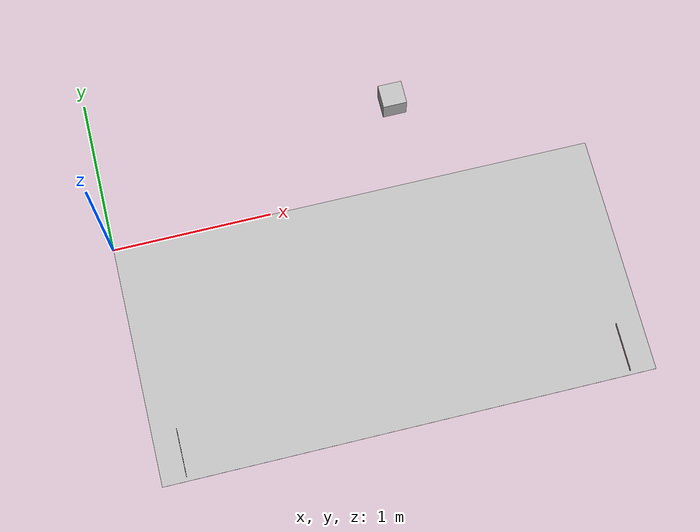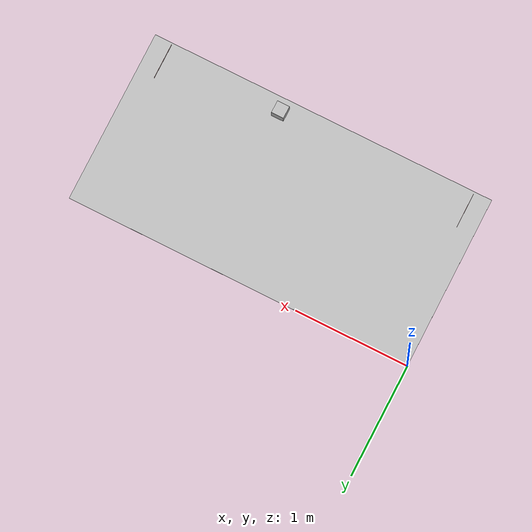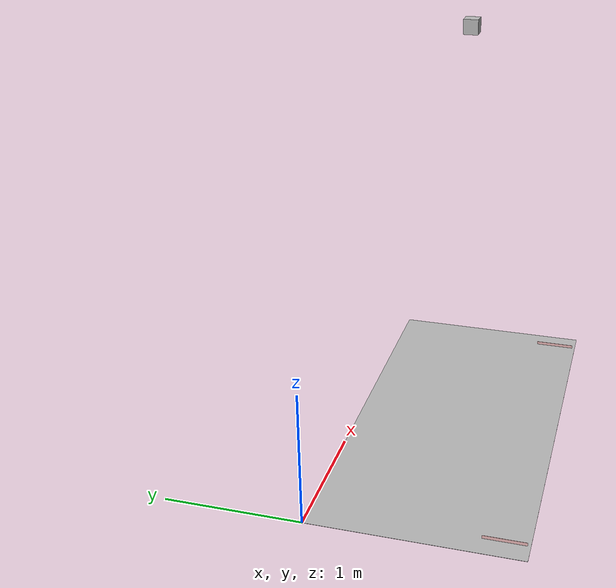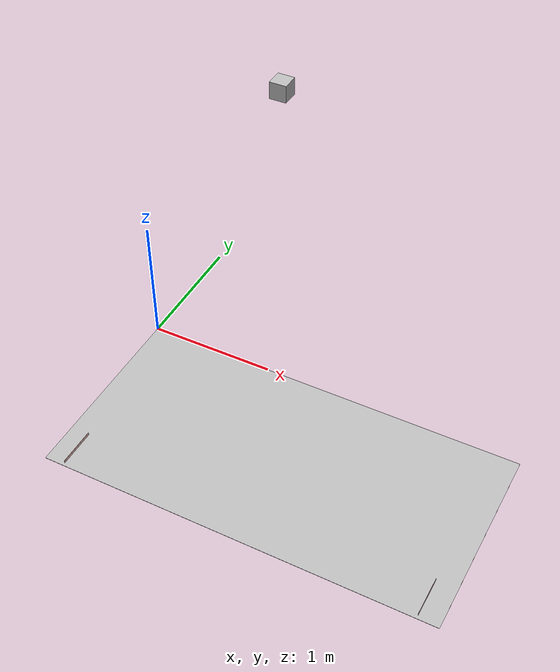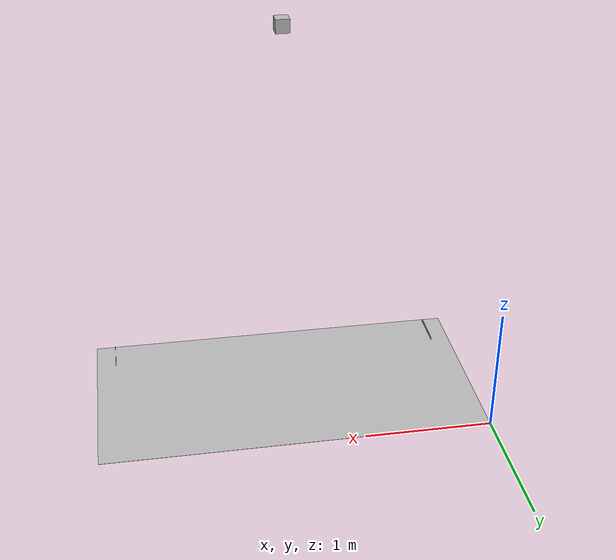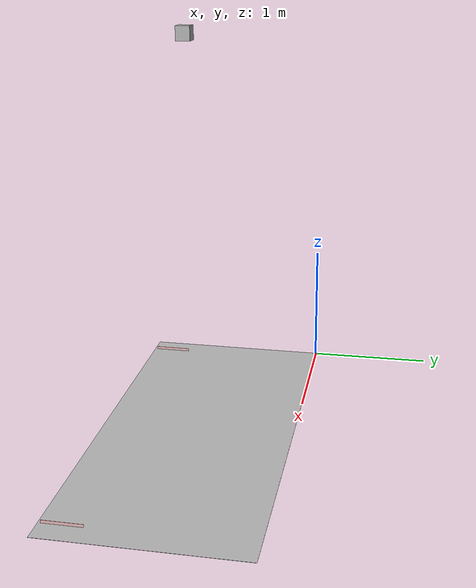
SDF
<sdf version="1.5">
 <world name="default">
  <include><uri>model://sun</uri></include>
  <model name="arena_ground">
   <pose>1.524 -0.762 0 0 0 0</pose>
   <include><uri>model://arena_ground</uri></include>
  </model>
  <model name="overhead_camera">
   <include><uri>model://overhead_camera</uri></include>
   <pose>1.524 -0.762 3.05 -1.57 1.57 0</pose>
  </model>
  <model name="walls">
   <static>true</static>
   <link name="right_wall">
    <collision name="right_wall_collision">
     <pose>2.889732 -1.349762 0.0127 0 0 0</pose>
     <geometry><box><size>0.001 0.3048 0.0254</size></box></geometry>
    </collision>
    <visual name="right_wall_visual">
     <pose>2.889732 -1.349762 0.0127 0 0 0</pose>
     <cast_shadows>false</cast_shadows>
     <geometry><box><size>0.001 0.3048 0.0254</size></box></geometry>
     <material>
      <ambient>0.9 0.7 0.7 1</ambient>
      <diffuse>0.9 0.7 0.7 1</diffuse>
      <specular>0 0 0 0</specular>
      <emissive>0 0 0 1</emissive>
     </material>
    </visual>
   </link>
   <link name="left_wall">
    <collision name="left_wall_collision">
     <pose>0.152868 -1.349762 0.0127 0 0 0</pose>
     <geometry><box><size>0.001 0.3048 0.0254</size></box></geometry>
    </collision>
    <visual name="left_wall_visual">
     <pose>0.152868 -1.349762 0.0127 0 0 0</pose>
     <cast_shadows>false</cast_shadows>
     <geometry><box><size>0.001 0.3048 0.0254</size></box></geometry>
     <material>
      <ambient>0.9 0.7 0.7 1</ambient>
      <diffuse>0.9 0.7 0.7 1</diffuse>
      <specular>0 0 0 0</specular>
      <emissive>0 0 0 1</emissive>
     </material>
    </visual>
   </link>
  </model>
 </world>
</sdf>

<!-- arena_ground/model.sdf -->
<sdf version="1.5">
    <model name="arena_ground">
        <static>true</static>
        <link name="link">
            <collision name="collision">
                <geometry>
                    <plane>
                        <normal>0 0 1</normal>
                        <size>100 100</size>
                    </plane>
                </geometry>
                <surface>
                    <friction>
                        <ode>
                            <mu>100</mu>
                            <mu2>50</mu2>
                        </ode>
                    </friction>
                </surface>
            </collision>
            <visual name="visual">
                <cast_shadows>false</cast_shadows>
                <geometry>
                    <plane>
                        <normal>0 0 1</normal>
                        <size>3.048 1.524</size>
                    </plane>
                </geometry>
                <material>
                    <script>
                        <uri>model://arena_ground/materials/scripts</uri>
                        <uri>model://arena_ground/materials/textures</uri>
                        <name>arena/Image</name>
                    </script>
                </material>
            </visual>
        </link>
    </model>
</sdf>

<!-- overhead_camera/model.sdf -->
<sdf version="1.5">
    <model name="overhead_camera">
        <static>true</static>
        <link name="camera_link">
            <visual name="visual">
                <cast_shadows>false</cast_shadows>
                <geometry>
                    <box>
                        <size>0.1 0.1 0.1</size>
                    </box>
                </geometry>
            </visual>
            <sensor type="camera" name="overhead_camera">
              <update_rate>30.0</update_rate>
              <camera name="head">
                <horizontal_fov>0.925025</horizontal_fov>
                <image>
                  <width>1280</width>
                  <height>768</height>
                  <format>R8G8B8</format>
                </image>
                <clip>
                  <near>0.02</near>
                  <far>300</far>
                </clip>
                <noise>
                  <type>gaussian</type>
                  <mean>0.0</mean>
                  <stddev>0.007</stddev>
                </noise>
              </camera>
              <plugin name="camera_controller" filename="libgazebo_ros_camera.so">
                <alwaysOn>true</alwaysOn>
                <updateRate>0</updateRate>
                <cameraName>head</cameraName>
                <imageTopicName>image_raw</imageTopicName>
                <cameraInfoTopicName>camera_info</cameraInfoTopicName>
                <frameName>base_link</frameName>
                <hackBaseline>0.07</hackBaseline>
                <distortionK1>0.0</distortionK1>
                <distortionK2>0.0</distortionK2>
                <distortionK3>0.0</distortionK3>
                <distortionT1>0.0</distortionT1>
                <distortionT2>0.0</distortionT2>
              </plugin>
            </sensor>
        </link>
    </model>
</sdf>
